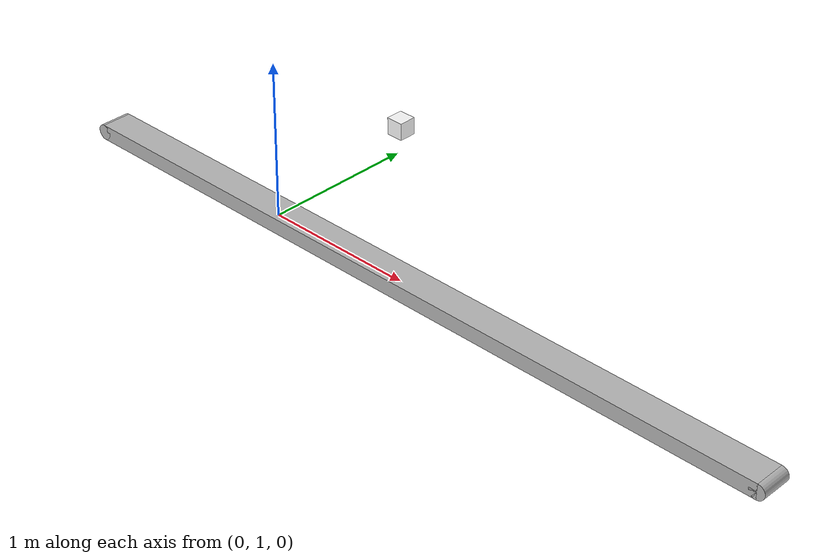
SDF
<?xml version="1.0" ?>
<sdf version="1.8">
    <world name="default">
        <physics name="4ms" type="ignored">
            <max_step_size>0.004</max_step_size>
            <real_time_factor>1.0</real_time_factor>
        </physics>
        <plugin
                filename="ignition-gazebo-physics-system"
                name="gz::sim::systems::Physics">
        </plugin>
        <plugin
                filename="ignition-gazebo-user-commands-system"
                name="gz::sim::systems::UserCommands">
        </plugin>
        <plugin
                filename="ignition-gazebo-scene-broadcaster-system"
                name="gz::sim::systems::SceneBroadcaster">
        </plugin>

        <scene>
            <ambient>1.0 1.0 1.0</ambient>
            <background>0.8 0.8 0.8</background>
        </scene>

        <light type="directional" name="sun">
            <cast_shadows>true</cast_shadows>
            <pose>0 0 10 0 0 0</pose>
            <diffuse>0.8 0.8 0.8 1</diffuse>
            <specular>0.8 0.8 0.8 1</specular>
            <attenuation>
                <range>1000</range>
                <constant>0.9</constant>
                <linear>0.01</linear>
                <quadratic>0.001</quadratic>
            </attenuation>
            <direction>-0.5 0.1 -0.9</direction>
        </light>

        <model name="conveyor">
           <pose>1 1 0 0 0 0</pose>
            <static>1</static>
            <link name='base_link'>
                <pose relative_to='__model__'>0 0 0 0 0 0</pose>
                <inertial>
                    <mass>6.06</mass>
                    <inertia>
                        <ixx>0.002731</ixx>
                        <ixy>0</ixy>
                        <ixz>0</ixz>
                        <iyy>0.032554</iyy>
                        <iyz>1.5e-05</iyz>
                        <izz>0.031391</izz>
                    </inertia>
                </inertial>
                <collision name='main_collision'>
                    <pose relative_to='base_link'>0 0 0 0 0 0</pose>
                    <geometry>
                        <box>
                            <size>5 0.2 0.1</size>
                        </box>
                    </geometry>
                    <surface>
                        <friction>
                            <ode>
                                <mu>0.7</mu>
                                <mu2>150</mu2>
                                <fdir1>0 1 0</fdir1>
                            </ode>
                        </friction>
                    </surface>
                </collision>
                <collision name='collision_1'>
                    <pose relative_to='base_link'>2.5 0 0 -1.570796327 0 0</pose>
                    <geometry>
                        <cylinder>
                            <length>0.2</length>
                            <radius>0.05</radius>
                        </cylinder>
                    </geometry>
                    <surface>
                        <friction>
                            <ode>
                                <mu>0.7</mu>
                                <mu2>150</mu2>
                                <fdir1>0 1 0</fdir1>
                            </ode>
                        </friction>
                    </surface>
                </collision>
                <collision name='collision_2'>
                    <pose relative_to='base_link'>-2.5 0 0 -1.570796327 0 0</pose>
                    <geometry>
                        <cylinder>
                            <length>0.2</length>
                            <radius>0.05</radius>
                        </cylinder>
                    </geometry>
                    <surface>
                        <friction>
                            <ode>
                                <mu>0.7</mu>
                                <mu2>150</mu2>
                                <fdir1>0 1 0</fdir1>
                            </ode>
                        </friction>
                    </surface>
                </collision>
                <visual name='main_visual'>
                    <pose relative_to='base_link'>0 0 0 0 0 0</pose>
                    <geometry>
                        <box>
                            <size>5 0.2 0.1</size>
                        </box>
                    </geometry>
                </visual>
                <visual name='visual_1'>
                    <pose relative_to='base_link'>2.5 0 0 -1.570796327 0 0</pose>
                    <geometry>
                        <cylinder>
                            <length>0.2</length>
                            <radius>0.05</radius>
                        </cylinder>
                    </geometry>
                </visual>
                <visual name='visual_2'>
                    <pose relative_to='base_link'>-2.5 0 0 -1.570796327 0 0</pose>
                    <geometry>
                        <cylinder>
                            <length>0.2</length>
                            <radius>0.05</radius>
                        </cylinder>
                    </geometry>
                </visual>
                <gravity>1</gravity>
                <kinematic>0</kinematic>
            </link>

            <plugin filename="libignition-gazebo-track-controller-system.so"
                    name="gz::sim::systems::TrackController">
                <link>base_link</link>
            </plugin>

            <!-- Moving Forward: W -->
            <plugin filename="libignition-gazebo-triggered-publisher-system.so"
                    name="gz::sim::systems::TriggeredPublisher">
                <input type="ignition.msgs.Int32" topic="/keyboard/keypress">
                    <match field="data">87</match>
                </input>
                <output type="ignition.msgs.Double" topic="/model/conveyor/link/base_link/track_cmd_vel">
                    data: 10.0
                </output>
            </plugin>

            <!-- Moving Backward: X -->
            <plugin filename="libignition-gazebo-triggered-publisher-system.so"
                    name="gz::sim::systems::TriggeredPublisher">
                <input type="ignition.msgs.Int32" topic="/keyboard/keypress">
                    <match field="data">88</match>
                </input>
                <output type="ignition.msgs.Double" topic="/model/conveyor/link/base_link/track_cmd_vel">
                    data: -1.0
                </output>
            </plugin>

            <!-- Stop: S -->
            <plugin filename="libignition-gazebo-triggered-publisher-system.so"
                    name="gz::sim::systems::TriggeredPublisher">
                <input type="ignition.msgs.Int32" topic="/keyboard/keypress">
                    <match field="data">83</match>
                </input>
                <output type="ignition.msgs.Double" topic="/model/conveyor/link/base_link/track_cmd_vel">
                    data: 0.0
                </output>
            </plugin>
        </model>

        <model name='box'>
            <pose frame=''>1 1 1 0 0 0</pose>
            <link name='base_link'>
                <inertial>
                    <mass>1.06</mass>
                    <inertia>
                        <ixx>0.01</ixx>
                        <ixy>0</ixy>
                        <ixz>0</ixz>
                        <iyy>0.01</iyy>
                        <iyz>0</iyz>
                        <izz>0.01</izz>
                    </inertia>
                </inertial>
                <visual name='main_visual'>
                    <pose relative_to='base_link'>0 0 0 0 0 0</pose>
                    <geometry>
                        <box>
                            <size>0.1 0.1 0.1</size>
                        </box>
                    </geometry>
                    <material>
                        <ambient>1 1 1 1</ambient>
                    </material>
                </visual>
                <collision name='main_collision'>
                    <geometry>
                        <box>
                            <size>0.1 0.1 0.1</size>
                        </box>
                    </geometry>
                    <pose relative_to='base_link'>0 0 0 0 0 0</pose>
                </collision>
            </link>
        </model>

        <gui fullscreen="0">
            <!-- 3D scene -->
            <plugin filename="GzScene3D" name="3D View">
                <ignition-gui>
                    <title>3D View</title>
                    <property type="bool" key="showTitleBar">false</property>
                    <property type="string" key="state">docked</property>
                </ignition-gui>

                <engine>ogre2</engine>
                <scene>scene</scene>
                <ambient_light>0.4 0.4 0.4</ambient_light>
                <background_color>0.8 0.8 0.8</background_color>
                <camera_pose>-6 0 6 0 0.5 0</camera_pose>
            </plugin>

            <!-- World control -->
            <plugin filename="WorldControl" name="World control">
                <ignition-gui>
                    <title>World control</title>
                    <property type="bool" key="showTitleBar">false</property>
                    <property type="bool" key="resizable">false</property>
                    <property type="double" key="height">72</property>
                    <property type="double" key="width">121</property>
                    <property type="double" key="z">1</property>

                    <property type="string" key="state">floating</property>
                    <anchors target="3D View">
                        <line own="left" target="left"/>
                        <line own="bottom" target="bottom"/>
                    </anchors>
                </ignition-gui>

                <play_pause>true</play_pause>
                <step>true</step>
                <start_paused>true</start_paused>

            </plugin>

            <!-- World statistics -->
            <plugin filename="WorldStats" name="World stats">
                <ignition-gui>
                    <title>World stats</title>
                    <property type="bool" key="showTitleBar">false</property>
                    <property type="bool" key="resizable">false</property>
                    <property type="double" key="height">110</property>
                    <property type="double" key="width">290</property>
                    <property type="double" key="z">1</property>

                    <property type="string" key="state">floating</property>
                    <anchors target="3D View">
                        <line own="right" target="right"/>
                        <line own="bottom" target="bottom"/>
                    </anchors>
                </ignition-gui>

                <sim_time>true</sim_time>
                <real_time>true</real_time>
                <real_time_factor>true</real_time_factor>
                <iterations>true</iterations>
            </plugin>

            <!-- Translate / rotate -->
            <plugin filename="TransformControl" name="Transform control">
                <ignition-gui>
                    <title>Transform control</title>
                    <anchors target="3D View">
                        <line own="left" target="left"/>
                        <line own="top" target="top"/>
                    </anchors>
                    <property key="resizable" type="bool">false</property>
                    <property key="width" type="double">230</property>
                    <property key="height" type="double">50</property>
                    <property key="state" type="string">floating</property>
                    <property key="showTitleBar" type="bool">false</property>
                    <property key="cardBackground" type="string">#666666</property>
                </ignition-gui>
            </plugin>

            <!-- Insert simple shapes -->
            <plugin filename="Shapes" name="Shapes">
                <ignition-gui>
                    <anchors target="Transform control">
                        <line own="left" target="right"/>
                        <line own="top" target="top"/>
                    </anchors>
                    <property key="resizable" type="bool">false</property>
                    <property key="width" type="double">200</property>
                    <property key="height" type="double">50</property>
                    <property key="state" type="string">floating</property>
                    <property key="showTitleBar" type="bool">false</property>
                    <property key="cardBackground" type="string">#666666</property>
                </ignition-gui>
            </plugin>

            <plugin filename="KeyPublisher" name="Key publisher">
                <ignition-gui>
                    <anchors target="3D View">
                        <line own="right" target="right"/>
                        <line own="top" target="top"/>
                    </anchors>
                    <property key="resizable" type="bool">false</property>
                    <property key="width" type="double">5</property>
                    <property key="height" type="double">5</property>
                    <property key="state" type="string">floating</property>
                    <property key="showTitleBar" type="bool">false</property>
                </ignition-gui>
            </plugin>

            <plugin filename="VisualizeContacts" name="Visualize Contacts">
                <ignition-gui>
                    <title>Visualize Contacts</title>
                    <anchors target="3D View">
                        <line own="right" target="right"/>
                        <line own="top" target="top"/>
                    </anchors>
                    <property key="resizable" type="bool">false</property>
                    <property key="width" type="double">230</property>
                    <property key="height" type="double">50</property>
                    <property key="state" type="string">floating</property>
                    <property key="showTitleBar" type="bool">false</property>
                    <property key="cardBackground" type="string">#ffffff</property>
                </ignition-gui>
            </plugin>
        </gui>
    </world>
</sdf>
